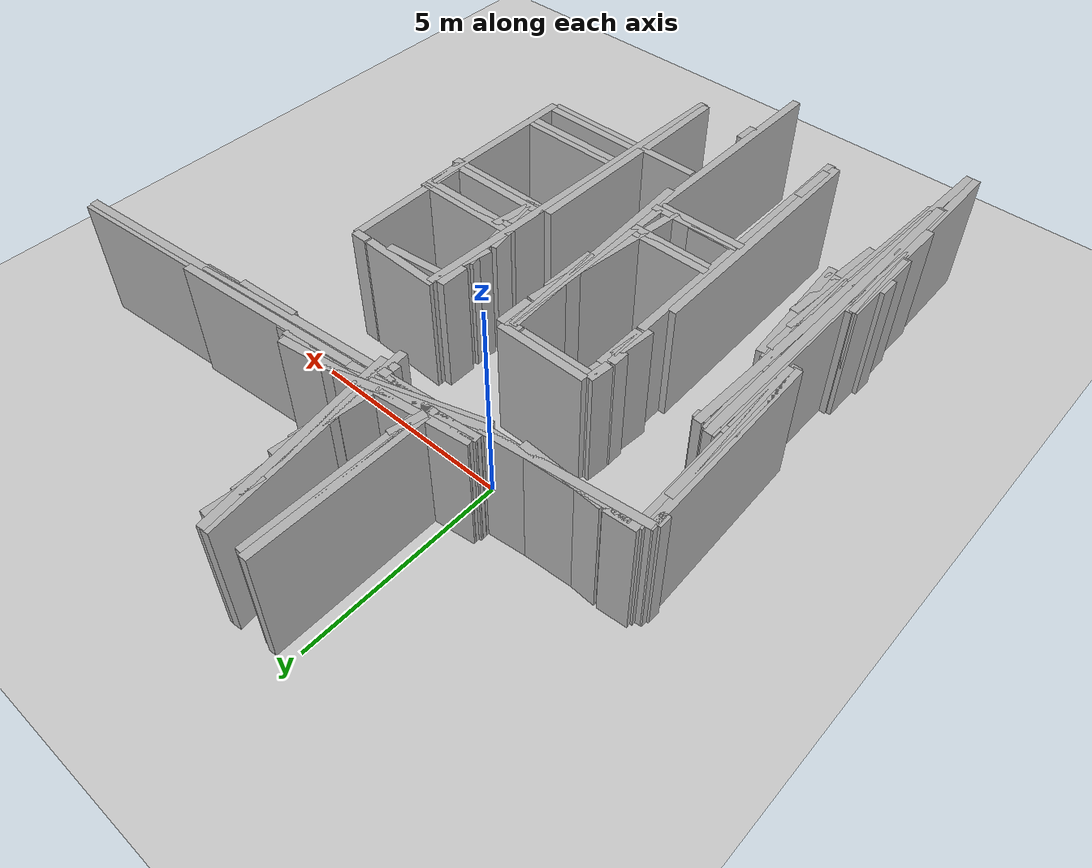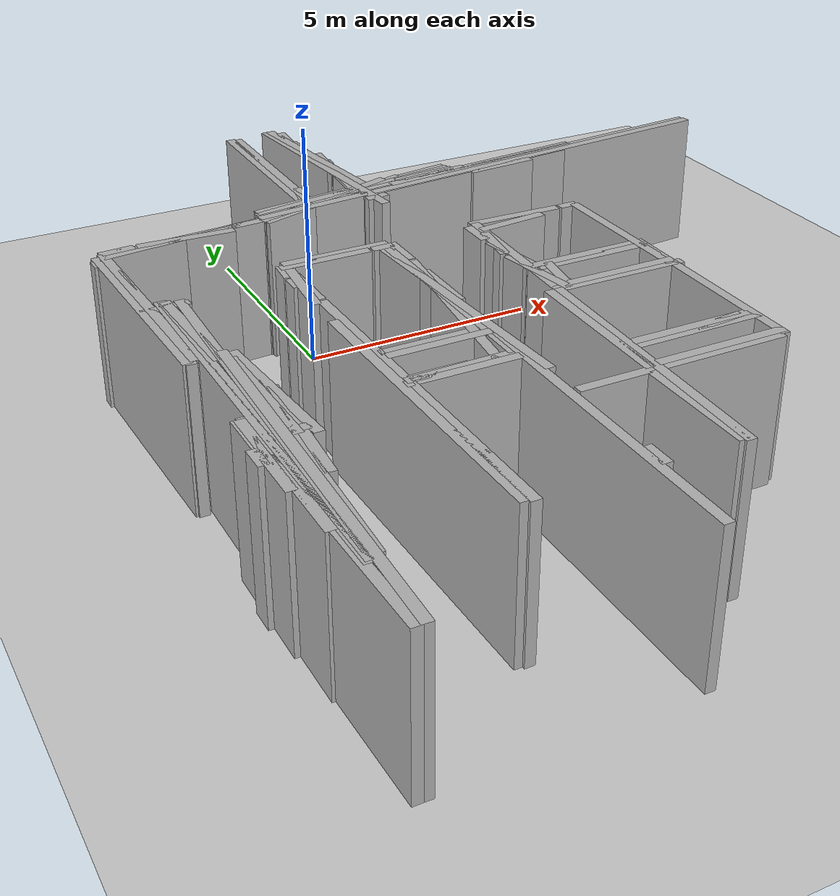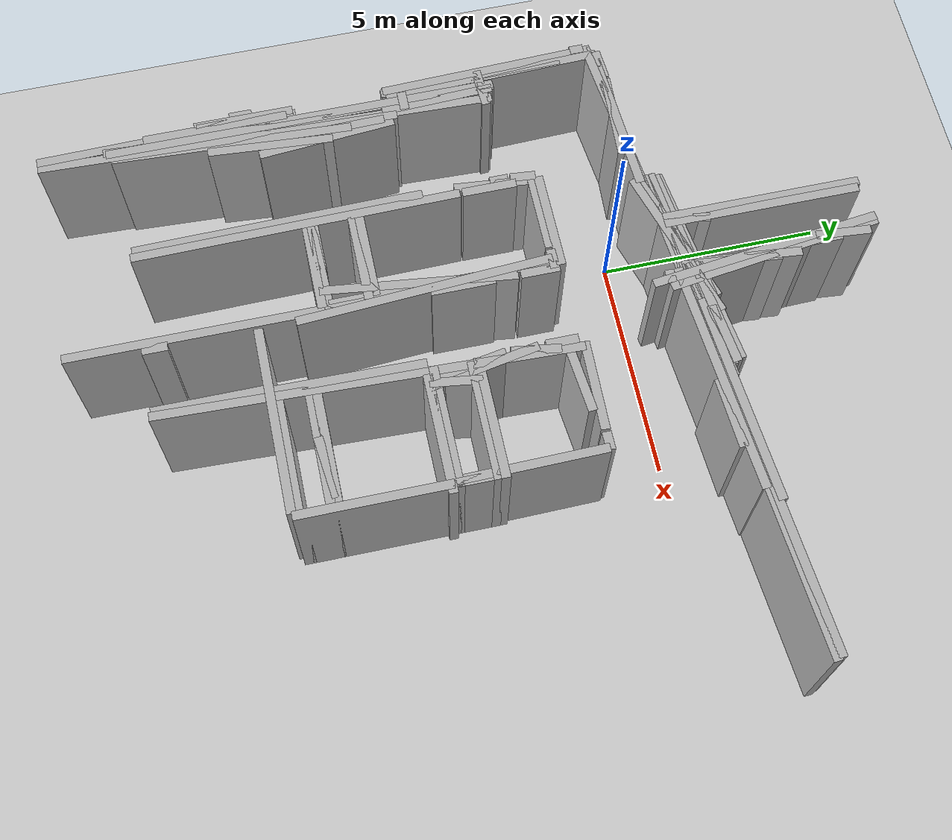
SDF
<sdf version="1.6">
 <world name="aboureyhan">
  <model name="ground_plane">
   <static>true</static>
   <link name="link">
    <collision name="collision">
     <geometry><plane><normal>0 0 1</normal><size>100 100</size></plane></geometry>
    </collision>
    <visual name="visual">
     <geometry><plane><normal>0 0 1</normal><size>500 500</size></plane></geometry>
     <material>
      <ambient>0.8 0.8 0.8 1</ambient>
      <diffuse>0.8 0.8 0.8 1</diffuse>
      <specular>0.8 0.8 0.8 1</specular>
     </material>
    </visual>
   </link>
  </model>
  <model name="wall_56">
   <static>true</static>
   <pose>4.850000000000001 1.375 1.5 0 0 0.0853775308067907</pose>
   <link name="link">
    <collision name="collision">
     <geometry><box><size>11.140578979568344 0.2 3.0</size></box></geometry>
    </collision>
    <visual name="visual">
     <geometry><box><size>11.140578979568344 0.2 3.0</size></box></geometry>
     <material><ambient>0.5 0.5 0.5 1</ambient><diffuse>0.7 0.7 0.7 1</diffuse></material>
    </visual>
   </link>
  </model>
  <model name="wall_66">
   <static>true</static>
   <pose>-0.04999999999999938 -1.4500000000000028 1.5 0 0 0.0</pose>
   <link name="link">
    <collision name="collision"><geometry><box><size>2.2 0.2 3.0</size></box></geometry></collision>
    <visual name="visual">
     <geometry><box><size>2.2 0.2 3.0</size></box></geometry>
     <material><ambient>0.5 0.5 0.5 1</ambient><diffuse>0.7 0.7 0.7 1</diffuse></material>
    </visual>
   </link>
  </model>
  <model name="wall_101">
   <static>true</static>
   <pose>-4.075 -1.9499999999999993 1.5 0 0 -1.5395564933646282</pose>
   <link name="link">
    <collision name="collision"><geometry><box><size>4.802343178074641 0.2 3.0</size></box></geometry></collision>
    <visual name="visual">
     <geometry><box><size>4.802343178074641 0.2 3.0</size></box></geometry>
     <material><ambient>0.5 0.5 0.5 1</ambient><diffuse>0.7 0.7 0.7 1</diffuse></material>
    </visual>
   </link>
  </model>
  <model name="wall_105">
   <static>true</static>
   <pose>1.0250000000000004 -4.400000000000002 1.5 0 0 -1.508377516798939</pose>
   <link name="link">
    <collision name="collision"><geometry><box><size>5.61092683965849 0.2 3.0</size></box></geometry></collision>
    <visual name="visual">
     <geometry><box><size>5.61092683965849 0.2 3.0</size></box></geometry>
     <material><ambient>0.5 0.5 0.5 1</ambient><diffuse>0.7 0.7 0.7 1</diffuse></material>
    </visual>
   </link>
  </model>
  <model name="wall_140">
   <static>true</static>
   <pose>-3.8 -9.225000000000001 1.5 0 0 -1.553406775505566</pose>
   <link name="link">
    <collision name="collision">
     <geometry><box><size>5.7508694994757095 0.2 3.0</size></box></geometry>
    </collision>
    <visual name="visual">
     <geometry><box><size>5.7508694994757095 0.2 3.0</size></box></geometry>
     <material><ambient>0.5 0.5 0.5 1</ambient><diffuse>0.7 0.7 0.7 1</diffuse></material>
    </visual>
   </link>
  </model>
  <model name="wall_142">
   <static>true</static>
   <pose>-3.925 -1.8750000000000036 1.5 0 0 -1.539878347231854</pose>
   <link name="link">
    <collision name="collision"><geometry><box><size>4.85231903320464 0.2 3.0</size></box></geometry></collision>
    <visual name="visual">
     <geometry><box><size>4.85231903320464 0.2 3.0</size></box></geometry>
     <material><ambient>0.5 0.5 0.5 1</ambient><diffuse>0.7 0.7 0.7 1</diffuse></material>
    </visual>
   </link>
  </model>
  <model name="wall_148">
   <static>true</static>
   <pose>-1.1999999999999997 -7.175000000000001 1.5 0 0 -1.5550495969450278</pose>
   <link name="link">
    <collision name="collision"><geometry><box><size>6.350787352761862 0.2 3.0</size></box></geometry></collision>
    <visual name="visual">
     <geometry><box><size>6.350787352761862 0.2 3.0</size></box></geometry>
     <material><ambient>0.5 0.5 0.5 1</ambient><diffuse>0.7 0.7 0.7 1</diffuse></material>
    </visual>
   </link>
  </model>
  <model name="wall_157">
   <static>true</static>
   <pose>5.325000000000001 -3.1000000000000014 1.5 0 0 -1.5556459709201267</pose>
   <link name="link">
    <collision name="collision"><geometry><box><size>3.300378766141847 0.2 3.0</size></box></geometry></collision>
    <visual name="visual">
     <geometry><box><size>3.300378766141847 0.2 3.0</size></box></geometry>
     <material><ambient>0.5 0.5 0.5 1</ambient><diffuse>0.7 0.7 0.7 1</diffuse></material>
    </visual>
   </link>
  </model>
  <model name="wall_163">
   <static>true</static>
   <pose>4.2250000000000005 1.1750000000000007 1.5 0 0 0.08715727455428239</pose>
   <link name="link">
    <collision name="collision"><geometry><box><size>5.169622810225133 0.2 3.0</size></box></geometry></collision>
    <visual name="visual">
     <geometry><box><size>5.169622810225133 0.2 3.0</size></box></geometry>
     <material><ambient>0.5 0.5 0.5 1</ambient><diffuse>0.7 0.7 0.7 1</diffuse></material>
    </visual>
   </link>
  </model>
  <model name="wall_168">
   <static>true</static>
   <pose>-1.0499999999999998 -6.8000000000000025 1.5 0 0 -1.5569083308639295</pose>
   <link name="link">
    <collision name="collision"><geometry><box><size>7.200694410957875 0.2 3.0</size></box></geometry></collision>
    <visual name="visual">
     <geometry><box><size>7.200694410957875 0.2 3.0</size></box></geometry>
     <material><ambient>0.5 0.5 0.5 1</ambient><diffuse>0.7 0.7 0.7 1</diffuse></material>
    </visual>
   </link>
  </model>
  <model name="wall_173">
   <static>true</static>
   <pose>3.2250000000000005 -4.199999999999999 1.5 0 0 1.4352686128093957</pose>
   <link name="link">
    <collision name="collision">
     <geometry><box><size>1.1101801655587273 0.2 3.0</size></box></geometry>
    </collision>
    <visual name="visual">
     <geometry><box><size>1.1101801655587273 0.2 3.0</size></box></geometry>
     <material><ambient>0.5 0.5 0.5 1</ambient><diffuse>0.7 0.7 0.7 1</diffuse></material>
    </visual>
   </link>
  </model>
  <model name="wall_182">
   <static>true</static>
   <pose>1.6750000000000003 1.3249999999999993 1.5 0 0 0.11773257480409452</pose>
   <link name="link">
    <collision name="collision"><geometry><box><size>4.682413907377263 0.2 3.0</size></box></geometry></collision>
    <visual name="visual">
     <geometry><box><size>4.682413907377263 0.2 3.0</size></box></geometry>
     <material><ambient>0.5 0.5 0.5 1</ambient><diffuse>0.7 0.7 0.7 1</diffuse></material>
    </visual>
   </link>
  </model>
  <model name="wall_185">
   <static>true</static>
   <pose>2.8500000000000005 -5.949999999999999 1.5 0 0 1.5378412291805985</pose>
   <link name="link">
    <collision name="collision"><geometry><box><size>9.104943712072032 0.2 3.0</size></box></geometry></collision>
    <visual name="visual">
     <geometry><box><size>9.104943712072032 0.2 3.0</size></box></geometry>
     <material><ambient>0.5 0.5 0.5 1</ambient><diffuse>0.7 0.7 0.7 1</diffuse></material>
    </visual>
   </link>
  </model>
  <model name="wall_191">
   <static>true</static>
   <pose>-3.6999999999999997 0.5749999999999993 1.5 0 0 0.07130746478529637</pose>
   <link name="link">
    <collision name="collision">
     <geometry><box><size>0.7017834423809105 0.2 3.0</size></box></geometry>
    </collision>
    <visual name="visual">
     <geometry><box><size>0.7017834423809105 0.2 3.0</size></box></geometry>
     <material><ambient>0.5 0.5 0.5 1</ambient><diffuse>0.7 0.7 0.7 1</diffuse></material>
    </visual>
   </link>
  </model>
  <model name="wall_206">
   <static>true</static>
   <pose>0.5500000000000007 3.125 1.5 0 0 1.5707963267948966</pose>
   <link name="link">
    <collision name="collision"><geometry><box><size>4.349999999999994 0.2 3.0</size></box></geometry></collision>
    <visual name="visual">
     <geometry><box><size>4.349999999999994 0.2 3.0</size></box></geometry>
     <material><ambient>0.5 0.5 0.5 1</ambient><diffuse>0.7 0.7 0.7 1</diffuse></material>
    </visual>
   </link>
  </model>
  <model name="wall_214">
   <static>true</static>
   <pose>-3.4749999999999996 -8.125 1.5 0 0 1.5393601454386223</pose>
   <link name="link">
    <collision name="collision"><geometry><box><size>7.953929846308681 0.2 3.0</size></box></geometry></collision>
    <visual name="visual">
     <geometry><box><size>7.953929846308681 0.2 3.0</size></box></geometry>
     <material><ambient>0.5 0.5 0.5 1</ambient><diffuse>0.7 0.7 0.7 1</diffuse></material>
    </visual>
   </link>
  </model>
  <model name="wall_226">
   <static>true</static>
   <pose>2.950000000000001 -3.900000000000002 1.5 0 0 -1.396124127786656</pose>
   <link name="link">
    <collision name="collision">
     <geometry><box><size>1.7262676501632028 0.2 3.0</size></box></geometry>
    </collision>
    <visual name="visual">
     <geometry><box><size>1.7262676501632028 0.2 3.0</size></box></geometry>
     <material><ambient>0.5 0.5 0.5 1</ambient><diffuse>0.7 0.7 0.7 1</diffuse></material>
    </visual>
   </link>
  </model>
  <model name="wall_247">
   <static>true</static>
   <pose>-3.6999999999999997 -6.275 1.5 0 0 1.5707963267948966</pose>
   <link name="link">
    <collision name="collision"><geometry><box><size>8.750000000000004 0.2 3.0</size></box></geometry></collision>
    <visual name="visual">
     <geometry><box><size>8.750000000000004 0.2 3.0</size></box></geometry>
     <material><ambient>0.5 0.5 0.5 1</ambient><diffuse>0.7 0.7 0.7 1</diffuse></material>
    </visual>
   </link>
  </model>
  <model name="wall_250">
   <static>true</static>
   <pose>3.0250000000000004 -3.5500000000000007 1.5 0 0 -1.385448376799202</pose>
   <link name="link">
    <collision name="collision">
     <geometry><box><size>2.4418230894149544 0.2 3.0</size></box></geometry>
    </collision>
    <visual name="visual">
     <geometry><box><size>2.4418230894149544 0.2 3.0</size></box></geometry>
     <material><ambient>0.5 0.5 0.5 1</ambient><diffuse>0.7 0.7 0.7 1</diffuse></material>
    </visual>
   </link>
  </model>
  <model name="wall_254">
   <static>true</static>
   <pose>0.40000000000000036 3.150000000000002 1.5 0 0 1.5707963267948966</pose>
   <link name="link">
    <collision name="collision"><geometry><box><size>4.399999999999999 0.2 3.0</size></box></geometry></collision>
    <visual name="visual">
     <geometry><box><size>4.399999999999999 0.2 3.0</size></box></geometry>
     <material><ambient>0.5 0.5 0.5 1</ambient><diffuse>0.7 0.7 0.7 1</diffuse></material>
    </visual>
   </link>
  </model>
  <model name="wall_256">
   <static>true</static>
   <pose>1.0500000000000007 -8.850000000000001 1.5 0 0 1.5707963267948966</pose>
   <link name="link">
    <collision name="collision"><geometry><box><size>6.5 0.2 3.0</size></box></geometry></collision>
    <visual name="visual">
     <geometry><box><size>6.5 0.2 3.0</size></box></geometry>
     <material><ambient>0.5 0.5 0.5 1</ambient><diffuse>0.7 0.7 0.7 1</diffuse></material>
    </visual>
   </link>
  </model>
  <model name="wall_275">
   <static>true</static>
   <pose>-3.65 -6.25 1.5 0 0 1.5707963267948966</pose>
   <link name="link">
    <collision name="collision"><geometry><box><size>8.700000000000003 0.2 3.0</size></box></geometry></collision>
    <visual name="visual">
     <geometry><box><size>8.700000000000003 0.2 3.0</size></box></geometry>
     <material><ambient>0.5 0.5 0.5 1</ambient><diffuse>0.7 0.7 0.7 1</diffuse></material>
    </visual>
   </link>
  </model>
  <model name="wall_277">
   <static>true</static>
   <pose>-2.3749999999999996 0.5500000000000007 1.5 0 0 0.10915346290887737</pose>
   <link name="link">
    <collision name="collision">
     <geometry><box><size>3.6718523935474305 0.2 3.0</size></box></geometry>
    </collision>
    <visual name="visual">
     <geometry><box><size>3.6718523935474305 0.2 3.0</size></box></geometry>
     <material><ambient>0.5 0.5 0.5 1</ambient><diffuse>0.7 0.7 0.7 1</diffuse></material>
    </visual>
   </link>
  </model>
  <model name="wall_279">
   <static>true</static>
   <pose>1.6000000000000005 2.900000000000002 1.5 0 0 -1.4536875822280324</pose>
   <link name="link">
    <collision name="collision"><geometry><box><size>5.135172830587108 0.2 3.0</size></box></geometry></collision>
    <visual name="visual">
     <geometry><box><size>5.135172830587108 0.2 3.0</size></box></geometry>
     <material><ambient>0.5 0.5 0.5 1</ambient><diffuse>0.7 0.7 0.7 1</diffuse></material>
    </visual>
   </link>
  </model>
  <model name="wall_288">
   <static>true</static>
   <pose>0.8499999999999996 -4.5 1.5 0 0 1.452306367636759</pose>
   <link name="link">
    <collision name="collision"><geometry><box><size>4.229657196511323 0.2 3.0</size></box></geometry></collision>
    <visual name="visual">
     <geometry><box><size>4.229657196511323 0.2 3.0</size></box></geometry>
     <material><ambient>0.5 0.5 0.5 1</ambient><diffuse>0.7 0.7 0.7 1</diffuse></material>
    </visual>
   </link>
  </model>
  <model name="wall_299">
   <static>true</static>
   <pose>1.8000000000000007 1.2000000000000028 1.5 0 0 0.09966865249116202</pose>
   <link name="link">
    <collision name="collision"><geometry><box><size>5.024937810560445 0.2 3.0</size></box></geometry></collision>
    <visual name="visual">
     <geometry><box><size>5.024937810560445 0.2 3.0</size></box></geometry>
     <material><ambient>0.5 0.5 0.5 1</ambient><diffuse>0.7 0.7 0.7 1</diffuse></material>
    </visual>
   </link>
  </model>
  <model name="wall_309">
   <static>true</static>
   <pose>1.6750000000000007 2.3000000000000007 1.5 0 0 1.4784669920632976</pose>
   <link name="link">
    <collision name="collision">
     <geometry><box><size>2.7115493725912456 0.2 3.0</size></box></geometry>
    </collision>
    <visual name="visual">
     <geometry><box><size>2.7115493725912456 0.2 3.0</size></box></geometry>
     <material><ambient>0.5 0.5 0.5 1</ambient><diffuse>0.7 0.7 0.7 1</diffuse></material>
    </visual>
   </link>
  </model>
  <model name="wall_318">
   <static>true</static>
   <pose>0.875 -1.6000000000000014 1.5 0 0 0.0</pose>
   <link name="link">
    <collision name="collision">
     <geometry><box><size>0.4499999999999993 0.2 3.0</size></box></geometry>
    </collision>
    <visual name="visual">
     <geometry><box><size>0.4499999999999993 0.2 3.0</size></box></geometry>
     <material><ambient>0.5 0.5 0.5 1</ambient><diffuse>0.7 0.7 0.7 1</diffuse></material>
    </visual>
   </link>
  </model>
  <model name="wall_319">
   <static>true</static>
   <pose>-3.075 -5.775000000000002 1.5 0 0 -1.4890119461769007</pose>
   <link name="link">
    <collision name="collision">
     <geometry><box><size>3.0602287496198755 0.2 3.0</size></box></geometry>
    </collision>
    <visual name="visual">
     <geometry><box><size>3.0602287496198755 0.2 3.0</size></box></geometry>
     <material><ambient>0.5 0.5 0.5 1</ambient><diffuse>0.7 0.7 0.7 1</diffuse></material>
    </visual>
   </link>
  </model>
  <model name="wall_323">
   <static>true</static>
   <pose>5.075000000000001 1.1500000000000021 1.5 0 0 0.06442683942555444</pose>
   <link name="link">
    <collision name="collision">
     <geometry><box><size>1.5532224567009074 0.2 3.0</size></box></geometry>
    </collision>
    <visual name="visual">
     <geometry><box><size>1.5532224567009074 0.2 3.0</size></box></geometry>
     <material><ambient>0.5 0.5 0.5 1</ambient><diffuse>0.7 0.7 0.7 1</diffuse></material>
    </visual>
   </link>
  </model>
  <model name="wall_331">
   <static>true</static>
   <pose>2.6750000000000007 -6.325000000000003 1.5 0 0 1.5554129250143012</pose>
   <link name="link">
    <collision name="collision">
     <geometry><box><size>3.2503845926290014 0.2 3.0</size></box></geometry>
    </collision>
    <visual name="visual">
     <geometry><box><size>3.2503845926290014 0.2 3.0</size></box></geometry>
     <material><ambient>0.5 0.5 0.5 1</ambient><diffuse>0.7 0.7 0.7 1</diffuse></material>
    </visual>
   </link>
  </model>
  <model name="wall_349">
   <static>true</static>
   <pose>3.9000000000000004 -1.4250000000000007 1.5 0 0 -0.02499479361892229</pose>
   <link name="link">
    <collision name="collision"><geometry><box><size>2.000624902374256 0.2 3.0</size></box></geometry></collision>
    <visual name="visual">
     <geometry><box><size>2.000624902374256 0.2 3.0</size></box></geometry>
     <material><ambient>0.5 0.5 0.5 1</ambient><diffuse>0.7 0.7 0.7 1</diffuse></material>
    </visual>
   </link>
  </model>
  <model name="wall_358">
   <static>true</static>
   <pose>-3.9499999999999997 -7.5 1.5 0 0 1.5707963267948966</pose>
   <link name="link">
    <collision name="collision"><geometry><box><size>2.200000000000003 0.2 3.0</size></box></geometry></collision>
    <visual name="visual">
     <geometry><box><size>2.200000000000003 0.2 3.0</size></box></geometry>
     <material><ambient>0.5 0.5 0.5 1</ambient><diffuse>0.7 0.7 0.7 1</diffuse></material>
    </visual>
   </link>
  </model>
  <model name="wall_379">
   <static>true</static>
   <pose>1.7000000000000002 2.125 1.5 0 0 1.4780400066067527</pose>
   <link name="link">
    <collision name="collision"><geometry><box><size>2.159282288168924 0.2 3.0</size></box></geometry></collision>
    <visual name="visual">
     <geometry><box><size>2.159282288168924 0.2 3.0</size></box></geometry>
     <material><ambient>0.5 0.5 0.5 1</ambient><diffuse>0.7 0.7 0.7 1</diffuse></material>
    </visual>
   </link>
  </model>
  <model name="wall_383">
   <static>true</static>
   <pose>4.875 1.2749999999999986 1.5 0 0 0.08499651732932903</pose>
   <link name="link">
    <collision name="collision">
     <geometry><box><size>11.190397669430697 0.2 3.0</size></box></geometry>
    </collision>
    <visual name="visual">
     <geometry><box><size>11.190397669430697 0.2 3.0</size></box></geometry>
     <material><ambient>0.5 0.5 0.5 1</ambient><diffuse>0.7 0.7 0.7 1</diffuse></material>
    </visual>
   </link>
  </model>
  <model name="wall_400">
   <static>true</static>
   <pose>-0.04999999999999938 -5.450000000000003 1.5 0 0 0.0</pose>
   <link name="link">
    <collision name="collision"><geometry><box><size>2.000000000000001 0.2 3.0</size></box></geometry></collision>
    <visual name="visual">
     <geometry><box><size>2.000000000000001 0.2 3.0</size></box></geometry>
     <material><ambient>0.5 0.5 0.5 1</ambient><diffuse>0.7 0.7 0.7 1</diffuse></material>
    </visual>
   </link>
  </model>
  <model name="wall_401">
   <static>true</static>
   <pose>-3.275 -5.825000000000003 1.5 0 0 -1.5526165117219184</pose>
   <link name="link">
    <collision name="collision">
     <geometry><box><size>2.7504545078950136 0.2 3.0</size></box></geometry>
    </collision>
    <visual name="visual">
     <geometry><box><size>2.7504545078950136 0.2 3.0</size></box></geometry>
     <material><ambient>0.5 0.5 0.5 1</ambient><diffuse>0.7 0.7 0.7 1</diffuse></material>
    </visual>
   </link>
  </model>
  <model name="wall_404">
   <static>true</static>
   <pose>-0.44999999999999973 -6.450000000000003 1.5 0 0 0.0</pose>
   <link name="link">
    <collision name="collision">
     <geometry><box><size>1.1000000000000005 0.2 3.0</size></box></geometry>
    </collision>
    <visual name="visual">
     <geometry><box><size>1.1000000000000005 0.2 3.0</size></box></geometry>
     <material><ambient>0.5 0.5 0.5 1</ambient><diffuse>0.7 0.7 0.7 1</diffuse></material>
    </visual>
   </link>
  </model>
  <model name="wall_411">
   <static>true</static>
   <pose>4.15 -3.6499999999999986 1.5 0 0 0.0</pose>
   <link name="link">
    <collision name="collision">
     <geometry><box><size>2.6999999999999993 0.2 3.0</size></box></geometry>
    </collision>
    <visual name="visual">
     <geometry><box><size>2.6999999999999993 0.2 3.0</size></box></geometry>
     <material><ambient>0.5 0.5 0.5 1</ambient><diffuse>0.7 0.7 0.7 1</diffuse></material>
    </visual>
   </link>
  </model>
  <model name="wall_412">
   <static>true</static>
   <pose>4.175000000000001 -7.850000000000001 1.5 0 0 0.0</pose>
   <link name="link">
    <collision name="collision">
     <geometry><box><size>2.6499999999999986 0.2 3.0</size></box></geometry>
    </collision>
    <visual name="visual">
     <geometry><box><size>2.6499999999999986 0.2 3.0</size></box></geometry>
     <material><ambient>0.5 0.5 0.5 1</ambient><diffuse>0.7 0.7 0.7 1</diffuse></material>
    </visual>
   </link>
  </model>
  <model name="wall_440">
   <static>true</static>
   <pose>1.6500000000000008 1.4000000000000021 1.5 0 0 0.1297025371559124</pose>
   <link name="link">
    <collision name="collision">
     <geometry><box><size>4.6389654018972815 0.2 3.0</size></box></geometry>
    </collision>
    <visual name="visual">
     <geometry><box><size>4.6389654018972815 0.2 3.0</size></box></geometry>
     <material><ambient>0.5 0.5 0.5 1</ambient><diffuse>0.7 0.7 0.7 1</diffuse></material>
    </visual>
   </link>
  </model>
  <model name="wall_454">
   <static>true</static>
   <pose>5.4 -5.900000000000002 1.5 0 0 1.5707963267948966</pose>
   <link name="link">
    <collision name="collision"><geometry><box><size>4.199999999999996 0.2 3.0</size></box></geometry></collision>
    <visual name="visual">
     <geometry><box><size>4.199999999999996 0.2 3.0</size></box></geometry>
     <material><ambient>0.5 0.5 0.5 1</ambient><diffuse>0.7 0.7 0.7 1</diffuse></material>
    </visual>
   </link>
  </model>
  <model name="wall_460">
   <static>true</static>
   <pose>4.275000000000001 -4.75 1.5 0 0 0.0</pose>
   <link name="link">
    <collision name="collision">
     <geometry><box><size>2.6500000000000004 0.2 3.0</size></box></geometry>
    </collision>
    <visual name="visual">
     <geometry><box><size>2.6500000000000004 0.2 3.0</size></box></geometry>
     <material><ambient>0.5 0.5 0.5 1</ambient><diffuse>0.7 0.7 0.7 1</diffuse></material>
    </visual>
   </link>
  </model>
  <model name="wall_469">
   <static>true</static>
   <pose>4.525000000000001 -7.1250000000000036 1.5 0 0 0.11065722117389463</pose>
   <link name="link">
    <collision name="collision"><geometry><box><size>1.358307770720612 0.2 3.0</size></box></geometry></collision>
    <visual name="visual">
     <geometry><box><size>1.358307770720612 0.2 3.0</size></box></geometry>
     <material><ambient>0.5 0.5 0.5 1</ambient><diffuse>0.7 0.7 0.7 1</diffuse></material>
    </visual>
   </link>
  </model>
  <model name="wall_470">
   <static>true</static>
   <pose>1.5499999999999998 4.649999999999999 1.5 0 0 1.487655094906456</pose>
   <link name="link">
    <collision name="collision">
     <geometry><box><size>1.2041594578792323 0.2 3.0</size></box></geometry>
    </collision>
    <visual name="visual">
     <geometry><box><size>1.2041594578792323 0.2 3.0</size></box></geometry>
     <material><ambient>0.5 0.5 0.5 1</ambient><diffuse>0.7 0.7 0.7 1</diffuse></material>
    </visual>
   </link>
  </model>
  <model name="wall_472">
   <static>true</static>
   <pose>-3.4749999999999996 -6.200000000000001 1.5 0 0 1.5410432047762315</pose>
   <link name="link">
    <collision name="collision"><geometry><box><size>8.403719414640165 0.2 3.0</size></box></geometry></collision>
    <visual name="visual">
     <geometry><box><size>8.403719414640165 0.2 3.0</size></box></geometry>
     <material><ambient>0.5 0.5 0.5 1</ambient><diffuse>0.7 0.7 0.7 1</diffuse></material>
    </visual>
   </link>
  </model>
  <model name="wall_475">
   <static>true</static>
   <pose>1.0999999999999996 -3.6000000000000014 1.5 0 0 1.5707963267948966</pose>
   <link name="link">
    <collision name="collision">
     <geometry><box><size>1.4000000000000057 0.2 3.0</size></box></geometry>
    </collision>
    <visual name="visual">
     <geometry><box><size>1.4000000000000057 0.2 3.0</size></box></geometry>
     <material><ambient>0.5 0.5 0.5 1</ambient><diffuse>0.7 0.7 0.7 1</diffuse></material>
    </visual>
   </link>
  </model>
  <model name="wall_493">
   <static>true</static>
   <pose>-0.07499999999999973 -6.600000000000001 1.5 0 0 0.0</pose>
   <link name="link">
    <collision name="collision">
     <geometry><box><size>2.1499999999999995 0.2 3.0</size></box></geometry>
    </collision>
    <visual name="visual">
     <geometry><box><size>2.1499999999999995 0.2 3.0</size></box></geometry>
     <material><ambient>0.5 0.5 0.5 1</ambient><diffuse>0.7 0.7 0.7 1</diffuse></material>
    </visual>
   </link>
  </model>
  <model name="wall_499">
   <static>true</static>
   <pose>5.150000000000001 -1.4500000000000028 1.5 0 0 0.0</pose>
   <link name="link">
    <collision name="collision">
     <geometry><box><size>0.40000000000000036 0.2 3.0</size></box></geometry>
    </collision>
    <visual name="visual">
     <geometry><box><size>0.40000000000000036 0.2 3.0</size></box></geometry>
     <material><ambient>0.5 0.5 0.5 1</ambient><diffuse>0.7 0.7 0.7 1</diffuse></material>
    </visual>
   </link>
  </model>
  <model name="wall_501">
   <static>true</static>
   <pose>3.3500000000000005 1.4499999999999993 1.5 0 0 0.07130746478529132</pose>
   <link name="link">
    <collision name="collision">
     <geometry><box><size>1.4035668847618203 0.2 3.0</size></box></geometry>
    </collision>
    <visual name="visual">
     <geometry><box><size>1.4035668847618203 0.2 3.0</size></box></geometry>
     <material><ambient>0.5 0.5 0.5 1</ambient><diffuse>0.7 0.7 0.7 1</diffuse></material>
    </visual>
   </link>
  </model>
  <model name="wall_518">
   <static>true</static>
   <pose>4.15 -4.600000000000001 1.5 0 0 0.0</pose>
   <link name="link">
    <collision name="collision">
     <geometry><box><size>2.6999999999999993 0.2 3.0</size></box></geometry>
    </collision>
    <visual name="visual">
     <geometry><box><size>2.6999999999999993 0.2 3.0</size></box></geometry>
     <material><ambient>0.5 0.5 0.5 1</ambient><diffuse>0.7 0.7 0.7 1</diffuse></material>
    </visual>
   </link>
  </model>
  <model name="wall_519">
   <static>true</static>
   <pose>-3.9749999999999996 -2.349999999999998 1.5 0 0 -1.5586018093466447</pose>
   <link name="link">
    <collision name="collision"><geometry><box><size>4.100304866714183 0.2 3.0</size></box></geometry></collision>
    <visual name="visual">
     <geometry><box><size>4.100304866714183 0.2 3.0</size></box></geometry>
     <material><ambient>0.5 0.5 0.5 1</ambient><diffuse>0.7 0.7 0.7 1</diffuse></material>
    </visual>
   </link>
  </model>
  <model name="wall_534">
   <static>true</static>
   <pose>1.8000000000000007 0.75 1.5 0 0 0.0</pose>
   <link name="link">
    <collision name="collision">
     <geometry><box><size>0.3000000000000007 0.2 3.0</size></box></geometry>
    </collision>
    <visual name="visual">
     <geometry><box><size>0.3000000000000007 0.2 3.0</size></box></geometry>
     <material><ambient>0.5 0.5 0.5 1</ambient><diffuse>0.7 0.7 0.7 1</diffuse></material>
    </visual>
   </link>
  </model>
  <model name="wall_543">
   <static>true</static>
   <pose>0.5249999999999999 1.5500000000000007 1.5 0 0 1.3854483767992034</pose>
   <link name="link">
    <collision name="collision">
     <geometry><box><size>0.8139410298049894 0.2 3.0</size></box></geometry>
    </collision>
    <visual name="visual">
     <geometry><box><size>0.8139410298049894 0.2 3.0</size></box></geometry>
     <material><ambient>0.5 0.5 0.5 1</ambient><diffuse>0.7 0.7 0.7 1</diffuse></material>
    </visual>
   </link>
  </model>
  <model name="wall_548">
   <static>true</static>
   <pose>-1.1749999999999998 -2.5000000000000036 1.5 0 0 1.477319545636307</pose>
   <link name="link">
    <collision name="collision">
     <geometry><box><size>1.6070158679988211 0.2 3.0</size></box></geometry>
    </collision>
    <visual name="visual">
     <geometry><box><size>1.6070158679988211 0.2 3.0</size></box></geometry>
     <material><ambient>0.5 0.5 0.5 1</ambient><diffuse>0.7 0.7 0.7 1</diffuse></material>
    </visual>
   </link>
  </model>
  <model name="wall_550">
   <static>true</static>
   <pose>3.2750000000000012 -8.0 1.5 0 0 0.0</pose>
   <link name="link">
    <collision name="collision"><geometry><box><size>4.15 0.2 3.0</size></box></geometry></collision>
    <visual name="visual">
     <geometry><box><size>4.15 0.2 3.0</size></box></geometry>
     <material><ambient>0.5 0.5 0.5 1</ambient><diffuse>0.7 0.7 0.7 1</diffuse></material>
    </visual>
   </link>
  </model>
  <model name="wall_604">
   <static>true</static>
   <pose>-3.675 -3.950000000000003 1.5 0 0 0.0</pose>
   <link name="link">
    <collision name="collision">
     <geometry><box><size>0.44999999999999973 0.2 3.0</size></box></geometry>
    </collision>
    <visual name="visual">
     <geometry><box><size>0.44999999999999973 0.2 3.0</size></box></geometry>
     <material><ambient>0.5 0.5 0.5 1</ambient><diffuse>0.7 0.7 0.7 1</diffuse></material>
    </visual>
   </link>
  </model>
  <model name="wall_608">
   <static>true</static>
   <pose>4.175000000000001 -3.8000000000000043 1.5 0 0 0.0</pose>
   <link name="link">
    <collision name="collision">
     <geometry><box><size>2.6499999999999986 0.2 3.0</size></box></geometry>
    </collision>
    <visual name="visual">
     <geometry><box><size>2.6499999999999986 0.2 3.0</size></box></geometry>
     <material><ambient>0.5 0.5 0.5 1</ambient><diffuse>0.7 0.7 0.7 1</diffuse></material>
    </visual>
   </link>
  </model>
  <model name="wall_616">
   <static>true</static>
   <pose>0.9500000000000011 -4.050000000000001 1.5 0 0 1.5707963267948966</pose>
   <link name="link">
    <collision name="collision"><geometry><box><size>4.800000000000004 0.2 3.0</size></box></geometry></collision>
    <visual name="visual">
     <geometry><box><size>4.800000000000004 0.2 3.0</size></box></geometry>
     <material><ambient>0.5 0.5 0.5 1</ambient><diffuse>0.7 0.7 0.7 1</diffuse></material>
    </visual>
   </link>
  </model>
  <model name="wall_631">
   <static>true</static>
   <pose>2.6000000000000014 -9.250000000000002 1.5 0 0 1.5707963267948966</pose>
   <link name="link">
    <collision name="collision"><geometry><box><size>2.400000000000002 0.2 3.0</size></box></geometry></collision>
    <visual name="visual">
     <geometry><box><size>2.400000000000002 0.2 3.0</size></box></geometry>
     <material><ambient>0.5 0.5 0.5 1</ambient><diffuse>0.7 0.7 0.7 1</diffuse></material>
    </visual>
   </link>
  </model>
  <model name="wall_640">
   <static>true</static>
   <pose>2.875000000000001 -2.4250000000000007 1.5 0 0 1.428899272190733</pose>
   <link name="link">
    <collision name="collision">
     <geometry><box><size>1.0606601717798256 0.2 3.0</size></box></geometry>
    </collision>
    <visual name="visual">
     <geometry><box><size>1.0606601717798256 0.2 3.0</size></box></geometry>
     <material><ambient>0.5 0.5 0.5 1</ambient><diffuse>0.7 0.7 0.7 1</diffuse></material>
    </visual>
   </link>
  </model>
  <model name="wall_641">
   <static>true</static>
   <pose>-0.3250000000000002 -1.6000000000000014 1.5 0 0 0.0</pose>
   <link name="link">
    <collision name="collision">
     <geometry><box><size>1.8499999999999996 0.2 3.0</size></box></geometry>
    </collision>
    <visual name="visual">
     <geometry><box><size>1.8499999999999996 0.2 3.0</size></box></geometry>
     <material><ambient>0.5 0.5 0.5 1</ambient><diffuse>0.7 0.7 0.7 1</diffuse></material>
    </visual>
   </link>
  </model>
  <model name="wall_657">
   <static>true</static>
   <pose>0.8750000000000009 1.125 1.5 0 0 0.2929123975255241</pose>
   <link name="link">
    <collision name="collision">
     <geometry><box><size>3.2901367752724213 0.2 3.0</size></box></geometry>
    </collision>
    <visual name="visual">
     <geometry><box><size>3.2901367752724213 0.2 3.0</size></box></geometry>
     <material><ambient>0.5 0.5 0.5 1</ambient><diffuse>0.7 0.7 0.7 1</diffuse></material>
    </visual>
   </link>
  </model>
  <model name="wall_661">
   <static>true</static>
   <pose>1.7250000000000005 3.075000000000003 1.5 0 0 -1.4347989087575126</pose>
   <link name="link">
    <collision name="collision"><geometry><box><size>4.794267410147248 0.2 3.0</size></box></geometry></collision>
    <visual name="visual">
     <geometry><box><size>4.794267410147248 0.2 3.0</size></box></geometry>
     <material><ambient>0.5 0.5 0.5 1</ambient><diffuse>0.7 0.7 0.7 1</diffuse></material>
    </visual>
   </link>
  </model>
  <model name="wall_662">
   <static>true</static>
   <pose>4.175000000000001 -7.200000000000003 1.5 0 0 0.0</pose>
   <link name="link">
    <collision name="collision">
     <geometry><box><size>2.6499999999999986 0.2 3.0</size></box></geometry>
    </collision>
    <visual name="visual">
     <geometry><box><size>2.6499999999999986 0.2 3.0</size></box></geometry>
     <material><ambient>0.5 0.5 0.5 1</ambient><diffuse>0.7 0.7 0.7 1</diffuse></material>
    </visual>
   </link>
  </model>
  <model name="wall_689">
   <static>true</static>
   <pose>-1.0499999999999998 -9.500000000000002 1.5 0 0 -1.5707963267948966</pose>
   <link name="link">
    <collision name="collision">
     <geometry><box><size>1.1999999999999993 0.2 3.0</size></box></geometry>
    </collision>
    <visual name="visual">
     <geometry><box><size>1.1999999999999993 0.2 3.0</size></box></geometry>
     <material><ambient>0.5 0.5 0.5 1</ambient><diffuse>0.7 0.7 0.7 1</diffuse></material>
    </visual>
   </link>
  </model>
  <model name="wall_705">
   <static>true</static>
   <pose>-3.375 -7.850000000000001 1.5 0 0 1.523661452981396</pose>
   <link name="link">
    <collision name="collision"><geometry><box><size>5.305892950295923 0.2 3.0</size></box></geometry></collision>
    <visual name="visual">
     <geometry><box><size>5.305892950295923 0.2 3.0</size></box></geometry>
     <material><ambient>0.5 0.5 0.5 1</ambient><diffuse>0.7 0.7 0.7 1</diffuse></material>
    </visual>
   </link>
  </model>
  <model name="wall_707">
   <static>true</static>
   <pose>-2.1999999999999997 0.6000000000000014 1.5 0 0 0.060532019782107996</pose>
   <link name="link">
    <collision name="collision"><geometry><box><size>3.306055050963308 0.2 3.0</size></box></geometry></collision>
    <visual name="visual">
     <geometry><box><size>3.306055050963308 0.2 3.0</size></box></geometry>
     <material><ambient>0.5 0.5 0.5 1</ambient><diffuse>0.7 0.7 0.7 1</diffuse></material>
    </visual>
   </link>
  </model>
  <model name="wall_709">
   <static>true</static>
   <pose>-3.65 -2.1750000000000007 1.5 0 0 0.05549850524572159</pose>
   <link name="link">
    <collision name="collision">
     <geometry><box><size>0.9013878188659971 0.2 3.0</size></box></geometry>
    </collision>
    <visual name="visual">
     <geometry><box><size>0.9013878188659971 0.2 3.0</size></box></geometry>
     <material><ambient>0.5 0.5 0.5 1</ambient><diffuse>0.7 0.7 0.7 1</diffuse></material>
    </visual>
   </link>
  </model>
  <model name="wall_732">
   <static>true</static>
   <pose>0.0 -5.600000000000001 1.5 0 0 0.0</pose>
   <link name="link">
    <collision name="collision"><geometry><box><size>2.0 0.2 3.0</size></box></geometry></collision>
    <visual name="visual">
     <geometry><box><size>2.0 0.2 3.0</size></box></geometry>
     <material><ambient>0.5 0.5 0.5 1</ambient><diffuse>0.7 0.7 0.7 1</diffuse></material>
    </visual>
   </link>
  </model>
  <model name="wall_733">
   <static>true</static>
   <pose>0.0 -6.475000000000001 1.5 0 0 0.02272336084163978</pose>
   <link name="link">
    <collision name="collision"><geometry><box><size>2.200568108466538 0.2 3.0</size></box></geometry></collision>
    <visual name="visual">
     <geometry><box><size>2.200568108466538 0.2 3.0</size></box></geometry>
     <material><ambient>0.5 0.5 0.5 1</ambient><diffuse>0.7 0.7 0.7 1</diffuse></material>
    </visual>
   </link>
  </model>
  <model name="wall_760">
   <static>true</static>
   <pose>-4.199999999999999 0.14999999999999858 1.5 0 0 -1.5707963267948966</pose>
   <link name="link">
    <collision name="collision">
     <geometry><box><size>0.29999999999999716 0.2 3.0</size></box></geometry>
    </collision>
    <visual name="visual">
     <geometry><box><size>0.29999999999999716 0.2 3.0</size></box></geometry>
     <material><ambient>0.5 0.5 0.5 1</ambient><diffuse>0.7 0.7 0.7 1</diffuse></material>
    </visual>
   </link>
  </model>
  <model name="wall_761">
   <static>true</static>
   <pose>2.8000000000000007 -1.8500000000000014 1.5 0 0 1.5707963267948966</pose>
   <link name="link">
    <collision name="collision">
     <geometry><box><size>0.7000000000000028 0.2 3.0</size></box></geometry>
    </collision>
    <visual name="visual">
     <geometry><box><size>0.7000000000000028 0.2 3.0</size></box></geometry>
     <material><ambient>0.5 0.5 0.5 1</ambient><diffuse>0.7 0.7 0.7 1</diffuse></material>
    </visual>
   </link>
  </model>
  <model name="wall_789">
   <static>true</static>
   <pose>-1.25 -2.3000000000000007 1.5 0 0 1.5707963267948966</pose>
   <link name="link">
    <collision name="collision">
     <geometry><box><size>0.3999999999999986 0.2 3.0</size></box></geometry>
    </collision>
    <visual name="visual">
     <geometry><box><size>0.3999999999999986 0.2 3.0</size></box></geometry>
     <material><ambient>0.5 0.5 0.5 1</ambient><diffuse>0.7 0.7 0.7 1</diffuse></material>
    </visual>
   </link>
  </model>
  <model name="wall_794">
   <static>true</static>
   <pose>1.200000000000001 -10.175000000000002 1.5 0 0 1.5707963267948966</pose>
   <link name="link">
    <collision name="collision">
     <geometry><box><size>0.5500000000000007 0.2 3.0</size></box></geometry>
    </collision>
    <visual name="visual">
     <geometry><box><size>0.5500000000000007 0.2 3.0</size></box></geometry>
     <material><ambient>0.5 0.5 0.5 1</ambient><diffuse>0.7 0.7 0.7 1</diffuse></material>
    </visual>
   </link>
  </model>
  <model name="wall_826">
   <static>true</static>
   <pose>3.700000000000001 -1.6750000000000007 1.5 0 0 0.0996686524911611</pose>
   <link name="link">
    <collision name="collision">
     <geometry><box><size>1.5074813431681333 0.2 3.0</size></box></geometry>
    </collision>
    <visual name="visual">
     <geometry><box><size>1.5074813431681333 0.2 3.0</size></box></geometry>
     <material><ambient>0.5 0.5 0.5 1</ambient><diffuse>0.7 0.7 0.7 1</diffuse></material>
    </visual>
   </link>
  </model>
  <model name="wall_830">
   <static>true</static>
   <pose>-3.8499999999999996 -8.150000000000002 1.5 0 0 1.5707963267948966</pose>
   <link name="link">
    <collision name="collision">
     <geometry><box><size>3.1999999999999957 0.2 3.0</size></box></geometry>
    </collision>
    <visual name="visual">
     <geometry><box><size>3.1999999999999957 0.2 3.0</size></box></geometry>
     <material><ambient>0.5 0.5 0.5 1</ambient><diffuse>0.7 0.7 0.7 1</diffuse></material>
    </visual>
   </link>
  </model>
  <model name="wall_853">
   <static>true</static>
   <pose>-3.15 -7.025 1.5 0 0 1.498196873064402</pose>
   <link name="link">
    <collision name="collision"><geometry><box><size>2.757263135792451 0.2 3.0</size></box></geometry></collision>
    <visual name="visual">
     <geometry><box><size>2.757263135792451 0.2 3.0</size></box></geometry>
     <material><ambient>0.5 0.5 0.5 1</ambient><diffuse>0.7 0.7 0.7 1</diffuse></material>
    </visual>
   </link>
  </model>
  <model name="wall_859">
   <static>true</static>
   <pose>1.0750000000000006 1.0749999999999993 1.5 0 0 0.2954408371437211</pose>
   <link name="link">
    <collision name="collision">
     <geometry><box><size>3.6062445840513937 0.2 3.0</size></box></geometry>
    </collision>
    <visual name="visual">
     <geometry><box><size>3.6062445840513937 0.2 3.0</size></box></geometry>
     <material><ambient>0.5 0.5 0.5 1</ambient><diffuse>0.7 0.7 0.7 1</diffuse></material>
    </visual>
   </link>
  </model>
  <model name="wall_876">
   <static>true</static>
   <pose>-3.425 -7.050000000000004 1.5 0 0 0.0</pose>
   <link name="link">
    <collision name="collision">
     <geometry><box><size>0.9499999999999997 0.2 3.0</size></box></geometry>
    </collision>
    <visual name="visual">
     <geometry><box><size>0.9499999999999997 0.2 3.0</size></box></geometry>
     <material><ambient>0.5 0.5 0.5 1</ambient><diffuse>0.7 0.7 0.7 1</diffuse></material>
    </visual>
   </link>
  </model>
  <model name="wall_887">
   <static>true</static>
   <pose>-3.775 -7.575000000000001 1.5 0 0 -1.5503909961083586</pose>
   <link name="link">
    <collision name="collision">
     <geometry><box><size>2.4505101509685687 0.2 3.0</size></box></geometry>
    </collision>
    <visual name="visual">
     <geometry><box><size>2.4505101509685687 0.2 3.0</size></box></geometry>
     <material><ambient>0.5 0.5 0.5 1</ambient><diffuse>0.7 0.7 0.7 1</diffuse></material>
    </visual>
   </link>
  </model>
  <model name="wall_902">
   <static>true</static>
   <pose>-3.9 -7.475 1.5 0 0 1.5707963267948966</pose>
   <link name="link">
    <collision name="collision"><geometry><box><size>2.150000000000002 0.2 3.0</size></box></geometry></collision>
    <visual name="visual">
     <geometry><box><size>2.150000000000002 0.2 3.0</size></box></geometry>
     <material><ambient>0.5 0.5 0.5 1</ambient><diffuse>0.7 0.7 0.7 1</diffuse></material>
    </visual>
   </link>
  </model>
  <model name="wall_904">
   <static>true</static>
   <pose>-1.0999999999999996 -2.5500000000000007 1.5 0 0 -1.5707963267948966</pose>
   <link name="link">
    <collision name="collision">
     <geometry><box><size>1.1999999999999957 0.2 3.0</size></box></geometry>
    </collision>
    <visual name="visual">
     <geometry><box><size>1.1999999999999957 0.2 3.0</size></box></geometry>
     <material><ambient>0.5 0.5 0.5 1</ambient><diffuse>0.7 0.7 0.7 1</diffuse></material>
    </visual>
   </link>
  </model>
  <model name="wall_905">
   <static>true</static>
   <pose>1.625 3.4499999999999993 1.5 0 0 -1.5490606199531036</pose>
   <link name="link">
    <collision name="collision">
     <geometry><box><size>2.3005434140654724 0.2 3.0</size></box></geometry>
    </collision>
    <visual name="visual">
     <geometry><box><size>2.3005434140654724 0.2 3.0</size></box></geometry>
     <material><ambient>0.5 0.5 0.5 1</ambient><diffuse>0.7 0.7 0.7 1</diffuse></material>
    </visual>
   </link>
  </model>
  <model name="wall_928">
   <static>true</static>
   <pose>4.125000000000001 -7.050000000000004 1.5 0 0 0.0</pose>
   <link name="link">
    <collision name="collision"><geometry><box><size>2.450000000000001 0.2 3.0</size></box></geometry></collision>
    <visual name="visual">
     <geometry><box><size>2.450000000000001 0.2 3.0</size></box></geometry>
     <material><ambient>0.5 0.5 0.5 1</ambient><diffuse>0.7 0.7 0.7 1</diffuse></material>
    </visual>
   </link>
  </model>
  <model name="wall_932">
   <static>true</static>
   <pose>-1.2249999999999996 -1.7750000000000021 1.5 0 0 1.480136439594151</pose>
   <link name="link">
    <collision name="collision">
     <geometry><box><size>0.5522680508593674 0.2 3.0</size></box></geometry>
    </collision>
    <visual name="visual">
     <geometry><box><size>0.5522680508593674 0.2 3.0</size></box></geometry>
     <material><ambient>0.5 0.5 0.5 1</ambient><diffuse>0.7 0.7 0.7 1</diffuse></material>
    </visual>
   </link>
  </model>
  <model name="wall_952">
   <static>true</static>
   <pose>-2.3249999999999997 0.5500000000000007 1.5 0 0 -0.051237167403419534</pose>
   <link name="link">
    <collision name="collision">
     <geometry><box><size>1.9525624189766637 0.2 3.0</size></box></geometry>
    </collision>
    <visual name="visual">
     <geometry><box><size>1.9525624189766637 0.2 3.0</size></box></geometry>
     <material><ambient>0.5 0.5 0.5 1</ambient><diffuse>0.7 0.7 0.7 1</diffuse></material>
    </visual>
   </link>
  </model>
  <model name="wall_958">
   <static>true</static>
   <pose>-3.55 -3.200000000000003 1.5 0 0 -1.5308176396716067</pose>
   <link name="link">
    <collision name="collision">
     <geometry><box><size>2.5019992006393608 0.2 3.0</size></box></geometry>
    </collision>
    <visual name="visual">
     <geometry><box><size>2.5019992006393608 0.2 3.0</size></box></geometry>
     <material><ambient>0.5 0.5 0.5 1</ambient><diffuse>0.7 0.7 0.7 1</diffuse></material>
    </visual>
   </link>
  </model>
  <model name="wall_974">
   <static>true</static>
   <pose>4.775000000000001 1.4499999999999993 1.5 0 0 0.08581026469650185</pose>
   <link name="link">
    <collision name="collision"><geometry><box><size>4.667172591623327 0.2 3.0</size></box></geometry></collision>
    <visual name="visual">
     <geometry><box><size>4.667172591623327 0.2 3.0</size></box></geometry>
     <material><ambient>0.5 0.5 0.5 1</ambient><diffuse>0.7 0.7 0.7 1</diffuse></material>
    </visual>
   </link>
  </model>
  <model name="wall_995">
   <static>true</static>
   <pose>-4.05 -7.5500000000000025 1.5 0 0 -1.5707963267948966</pose>
   <link name="link">
    <collision name="collision">
     <geometry><box><size>0.49999999999999645 0.2 3.0</size></box></geometry>
    </collision>
    <visual name="visual">
     <geometry><box><size>0.49999999999999645 0.2 3.0</size></box></geometry>
     <material><ambient>0.5 0.5 0.5 1</ambient><diffuse>0.7 0.7 0.7 1</diffuse></material>
    </visual>
   </link>
  </model>
  <model name="wall_1004">
   <static>true</static>
   <pose>1.0999999999999996 -1.9250000000000007 1.5 0 0 1.5707963267948966</pose>
   <link name="link">
    <collision name="collision">
     <geometry><box><size>0.8500000000000014 0.2 3.0</size></box></geometry>
    </collision>
    <visual name="visual">
     <geometry><box><size>0.8500000000000014 0.2 3.0</size></box></geometry>
     <material><ambient>0.5 0.5 0.5 1</ambient><diffuse>0.7 0.7 0.7 1</diffuse></material>
    </visual>
   </link>
  </model>
 </world>
</sdf>
